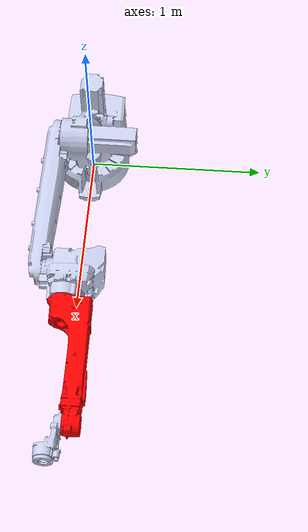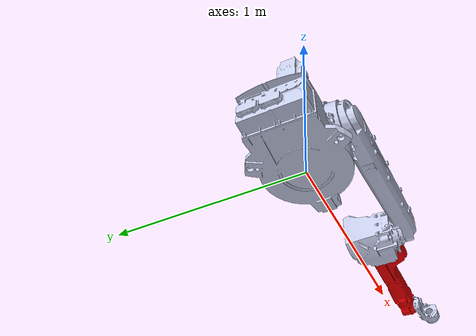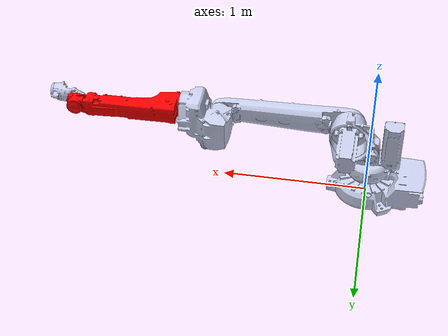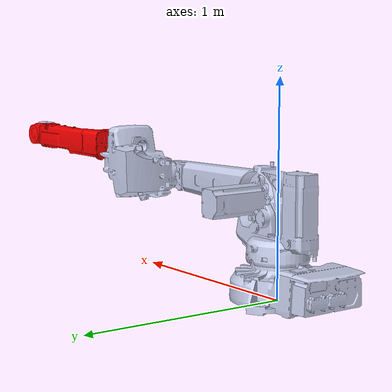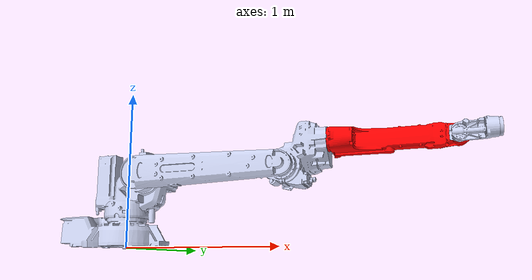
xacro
<?xml version="1.0" encoding="UTF-8"?>
<robot xmlns:xacro="http://wiki.ros.org/xacro" name="welding_robot">

    <xacro:include filename="$(find welding_robot_description)/urdf/common.xacro" />
    <xacro:include filename="$(find welding_robot_description)/urdf/welding_robot_gazebo.xacro" />
    <xacro:include filename="$(find welding_robot_description)/urdf/welding_robot_macro.xacro" />
</robot>

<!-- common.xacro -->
<robot xmlns:xacro="http://www.ros.org/wiki/xacro" name="welding_robot">
    <xacro:property name="joint1_upper_limit" value="${radians(180)}" />
    <xacro:property name="joint1_lower_limit" value="${radians(-180)}" />

    <!-- Need to do calculation here, since the datasheet pose is L-shape and mine is extended
    straight in x direction -->
    <xacro:property name="joint2_upper_limit" value="${radians(65)}" />
    <xacro:property name="joint2_lower_limit" value="${radians(-185)}" />

    <xacro:property name="joint3_upper_limit" value="${radians(180)}" />
    <xacro:property name="joint3_lower_limit" value="${radians(-75)}" />

    <xacro:property name="joint4_upper_limit" value="${radians(175)}" />
    <xacro:property name="joint4_lower_limit" value="${radians(-175)}" />

    <xacro:property name="joint5_upper_limit" value="${radians(120)}" />
    <xacro:property name="joint5_lower_limit" value="${radians(-120)}" />

    <xacro:property name="joint6_upper_limit" value="${radians(400)}" />
    <xacro:property name="joint6_lower_limit" value="${radians(-400)}" />
</robot>

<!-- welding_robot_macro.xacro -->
<robot
    name="welding_robot">
    <link name="world"></link>
    <link
        name="base_link">
        <inertial>
            <origin
                xyz="-0.0929937292504419 0.000399767609570289 0.0959021779308826"
                rpy="0 0 0" />
            <mass
                value="31.9091200007545" />
            <inertia
                ixx="0.421447222495448"
                ixy="0.0037819462335109"
                ixz="0.0229893954678047"
                iyy="0.869675903019841"
                iyz="0.000278861587942182"
                izz="1.09695200484203" />
        </inertial>
        <visual>
            <origin
                xyz="0 0 0"
                rpy="0 0 0" />
            <geometry>
                <mesh
                    filename="package://welding_robot_description/meshes/base_link.STL" />
            </geometry>
            <material
                name="">
                <color
                    rgba="0.792156862745098 0.819607843137255 0.933333333333333 1" />
            </material>
        </visual>
        <collision>
            <origin
                xyz="0 0 0"
                rpy="0 0 0" />
            <geometry>
                <mesh
                    filename="package://welding_robot_description/meshes/base_link.STL" />
            </geometry>
        </collision>
    </link>
    <joint name="world_to_base" type="fixed">
        <parent link="world" />
        <child link="base_link" />
    </joint>
    <link
        name="link1">
        <inertial>
            <origin
                xyz="0.0430085938702163 0.00696417924685074 0.159697721120496"
                rpy="0 0 0" />
            <mass
                value="23.921353395102" />
            <inertia
                ixx="0.395236282597606"
                ixy="-0.00940048082513979"
                ixz="-0.041470347217743"
                iyy="0.604734124936167"
                iyz="-0.00587838591642869"
                izz="0.572670389108296" />
        </inertial>
        <visual>
            <origin
                xyz="0 0 0"
                rpy="0 0 0" />
            <geometry>
                <mesh
                    filename="package://welding_robot_description/meshes/link1.STL" />
            </geometry>
            <material
                name="">
                <color
                    rgba="0.792156862745098 0.819607843137255 0.933333333333333 1" />
            </material>
        </visual>
        <collision>
            <origin
                xyz="0 0 0"
                rpy="0 0 0" />
            <geometry>
                <mesh
                    filename="package://welding_robot_description/meshes/link1.STL" />
            </geometry>
        </collision>
    </link>
    <joint
        name="joint1"
        type="revolute">
        <origin
            xyz="0 0 0.23"
            rpy="0 0 0" />
        <parent
            link="base_link" />
        <child
            link="link1" />
        <axis
            xyz="0 0 1" />
        <limit
            lower="${joint1_lower_limit}"
            upper="${joint1_upper_limit}"
            effort="0"
            velocity="0" />
    </joint>
    <link
        name="link2">
        <inertial>
            <origin
                xyz="0.413903893302138 6.01572906893666E-05 -0.032046741090647"
                rpy="0 0 0" />
            <mass
                value="15.7551993052296" />
            <inertia
                ixx="0.0483159174035791"
                ixy="0.000255145389541365"
                ixz="0.00589226848669825"
                iyy="1.10406779987279"
                iyz="5.18849425289219E-07"
                izz="1.12343882886802" />
        </inertial>
        <visual>
            <origin
                xyz="0 0 0"
                rpy="0 0 0" />
            <geometry>
                <mesh
                    filename="package://welding_robot_description/meshes/link2.STL" />
            </geometry>
            <material
                name="">
                <color
                    rgba="0.792156862745098 0.819607843137255 0.933333333333333 1" />
            </material>
        </visual>
        <collision>
            <origin
                xyz="0 0 0"
                rpy="0 0 0" />
            <geometry>
                <mesh
                    filename="package://welding_robot_description/meshes/link2.STL" />
            </geometry>
        </collision>
    </link>
    <joint
        name="joint2"
        type="revolute">
        <origin
            xyz="0.15 -0.1404 0.215"
            rpy="-1.5708 0 0" />
        <parent
            link="link1" />
        <child
            link="link2" />
        <axis
            xyz="0 0 1" />
        <limit
            lower="${joint2_lower_limit}"
            upper="${joint2_upper_limit}"
            effort="0"
            velocity="0" />
    </joint>
    <link
        name="link3">
        <inertial>
            <origin
                xyz="0.057084345693889 -0.0544677374605202 0.179683311866053"
                rpy="0 0 0" />
            <mass
                value="20.2703440803898" />
            <inertia
                ixx="0.272489784342283"
                ixy="0.0614344615798052"
                ixz="0.00781250522080438"
                iyy="0.273164414136875"
                iyz="0.00718708687882421"
                izz="0.293444701233596" />
        </inertial>
        <visual>
            <origin
                xyz="0 0 0"
                rpy="0 0 0" />
            <geometry>
                <mesh
                    filename="package://welding_robot_description/meshes/link3.STL" />
            </geometry>
            <material
                name="">
                <color
                    rgba="0.792156862745098 0.819607843137255 0.933333333333333 1" />
            </material>
        </visual>
        <collision>
            <origin
                xyz="0 0 0"
                rpy="0 0 0" />
            <geometry>
                <mesh
                    filename="package://welding_robot_description/meshes/link3.STL" />
            </geometry>
        </collision>
    </link>
    <joint
        name="joint3"
        type="revolute">
        <origin
            xyz="0.9 0 -0.0096"
            rpy="0 0 0" />
        <parent
            link="link2" />
        <child
            link="link3" />
        <axis
            xyz="0 0 1" />
        <limit
            lower="${joint3_lower_limit}"
            upper="${joint3_upper_limit}"
            effort="0"
            velocity="0" />
    </joint>
    <link
        name="link4">
        <inertial>
            <origin
                xyz="-0.00187110793536971 -0.0873002349060387 0.31439194690357"
                rpy="0 0 0" />
            <mass
                value="10.5450027654616" />
            <inertia
                ixx="0.535192042412382"
                ixy="-0.000326158571932255"
                ixz="-0.00186684954565243"
                iyy="0.522699640515615"
                iyz="0.0528815415766676"
                izz="0.039628953125396" />
        </inertial>
        <visual>
            <origin
                xyz="0 0 0"
                rpy="0 0 0" />
            <geometry>
                <mesh
                    filename="package://welding_robot_description/meshes/link4.STL" />
            </geometry>
            <material
                name="">
                <color
                    rgba="0.996078431372549 0 0 1" />
            </material>
        </visual>
        <collision>
            <origin
                xyz="0 0 0"
                rpy="0 0 0" />
            <geometry>
                <mesh
                    filename="package://welding_robot_description/meshes/link4.STL" />
            </geometry>
        </collision>
    </link>
    <joint
        name="joint4"
        type="revolute">
        <origin
            xyz="0.238 -0.15 0.15"
            rpy="-1.5708 0 -1.5708" />
        <parent
            link="link3" />
        <child
            link="link4" />
        <axis
            xyz="0 0 1" />
        <limit
            lower="${joint4_lower_limit}"
            upper="${joint4_upper_limit}"
            effort="0"
            velocity="0" />
    </joint>
    <link
        name="link5">
        <inertial>
            <origin
                xyz="0.092716433094624 -0.000702054822862452 -0.0523232778676363"
                rpy="0 0 0" />
            <mass
                value="1.0432151948745" />
            <inertia
                ixx="0.00207881906865029"
                ixy="-4.33682930942942E-05"
                ixz="0.00144478504813504"
                iyy="0.00603242280484296"
                iyz="6.40267757266068E-06"
                izz="0.0056992330657813" />
        </inertial>
        <visual>
            <origin
                xyz="0 0 0"
                rpy="0 0 0" />
            <geometry>
                <mesh
                    filename="package://welding_robot_description/meshes/link5.STL" />
            </geometry>
            <material
                name="">
                <color
                    rgba="0.792156862745098 0.819607843137255 0.933333333333333 1" />
            </material>
        </visual>
        <collision>
            <origin
                xyz="0 0 0"
                rpy="0 0 0" />
            <geometry>
                <mesh
                    filename="package://welding_robot_description/meshes/link5.STL" />
            </geometry>
        </collision>
    </link>
    <joint
        name="joint5"
        type="revolute">
        <origin
            xyz="0 -0.079997 0.69999"
            rpy="1.5708 -1.5708 0" />
        <parent
            link="link4" />
        <child
            link="link5" />
        <axis
            xyz="0 0 1" />
        <limit
            lower="${joint5_lower_limit}"
            upper="${joint5_upper_limit}"
            effort="0"
            velocity="0" />
    </joint>
    <link
        name="eef">
        <inertial>
            <origin
                xyz="-0.00020055909938177 -0.000418068522453875 -0.00792381512597196"
                rpy="0 0 0" />
            <mass
                value="0.0766980852773654" />
            <inertia
                ixx="6.51413284307492E-05"
                ixy="2.55706386709703E-07"
                ixz="6.05040605765171E-09"
                iyy="6.57472395509658E-05"
                iyz="4.55172837887951E-08"
                izz="0.000127107365112355" />
        </inertial>
        <visual>
            <origin
                xyz="0 0 0"
                rpy="0 0 0" />
            <geometry>
                <mesh
                    filename="package://welding_robot_description/meshes/eef.STL" />
            </geometry>
            <material
                name="">
                <color
                    rgba="0.792156862745098 0.819607843137255 0.933333333333333 1" />
            </material>
        </visual>
        <collision>
            <origin
                xyz="0 0 0"
                rpy="0 0 0" />
            <geometry>
                <mesh
                    filename="package://welding_robot_description/meshes/eef.STL" />
            </geometry>
        </collision>
    </link>
    <joint
        name="joint6"
        type="revolute">
        <origin
            xyz="0.19901 0 -0.08"
            rpy="-1.5708 0 -1.5708" />
        <parent
            link="link5" />
        <child
            link="eef" />
        <axis
            xyz="0 0 1" />
        <limit
            lower="${joint6_lower_limit}"
            upper="${joint6_upper_limit}"
            effort="0"
            velocity="0" />
    </joint>
</robot>
